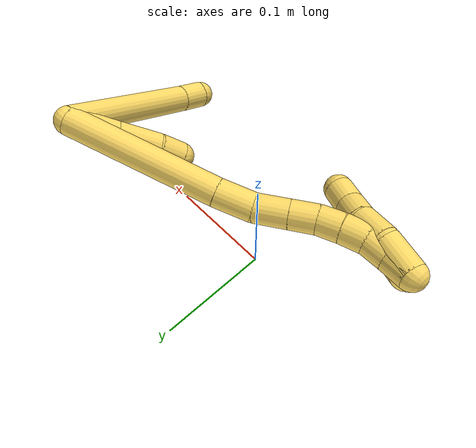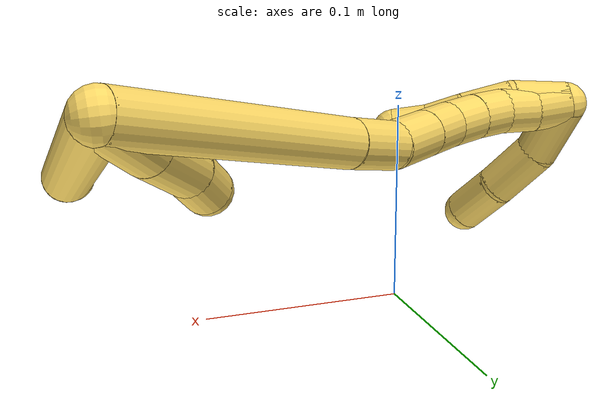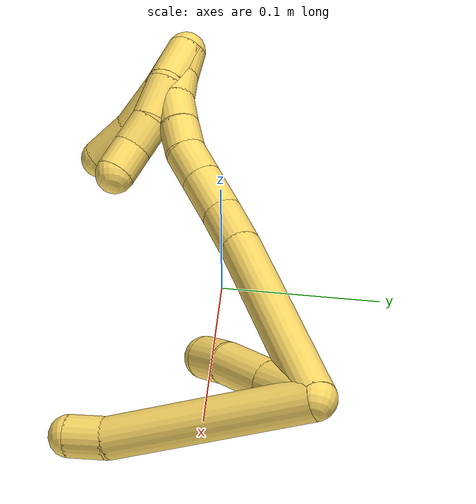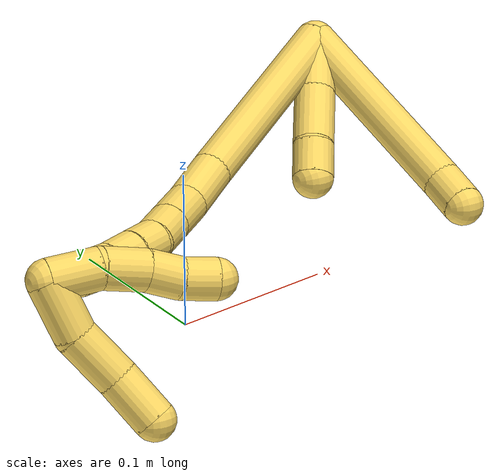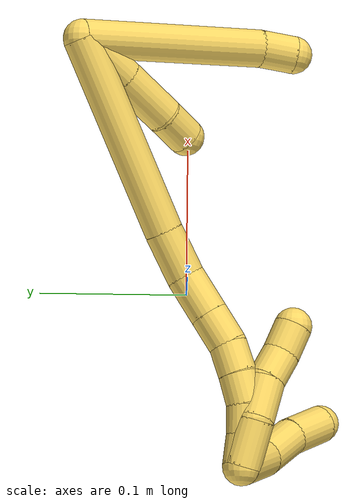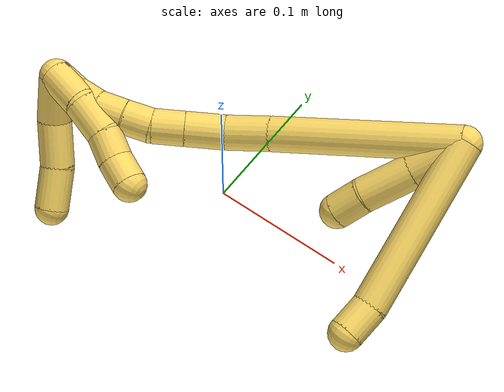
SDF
<sdf version="1.7">
 <world name="default">
  <model name="5">
   <static>0</static>
   <link name="5">
    <collision name="collision-cylinder-e_1_2_8">
     <pose>-0.061298 -0.014032 0.00694 1.11149 -1.32077 -0.898894</pose>
     <geometry><cylinder><radius>0.0125</radius><length>0.126531</length></cylinder></geometry>
     <surface>
      <friction><ode><mu>1.16</mu><mu2>1.16</mu2><slip1>0</slip1><slip2>0</slip2></ode></friction>
      <contact><ode><kp>1e+06</kp><kd>1</kd><max_vel>0</max_vel><min_depth>0.001</min_depth></ode></contact>
     </surface>
    </collision>
    <visual name="visual-cylinder-e_1_2_8">
     <pose>-0.061298 -0.014032 0.00694 1.11149 -1.32077 -0.898894</pose>
     <geometry><cylinder><radius>0.0125</radius><length>0.126531</length></cylinder></geometry>
     <material><ambient>1 0.858824 0.4 1</ambient></material>
    </visual>
    <collision name="collision-cylinder-e_2_8_6">
     <pose>-0.134273 -0.028955 0.013133 2.26804 -1.47153 -2.18941</pose>
     <geometry><cylinder><radius>0.0125</radius><length>0.023469</length></cylinder></geometry>
     <surface>
      <friction><ode><mu>1.16</mu><mu2>1.16</mu2><slip1>0</slip1><slip2>0</slip2></ode></friction>
      <contact><ode><kp>1e+06</kp><kd>1</kd><max_vel>0</max_vel><min_depth>0.001</min_depth></ode></contact>
     </surface>
    </collision>
    <visual name="visual-cylinder-e_2_8_6">
     <pose>-0.134273 -0.028955 0.013133 2.26804 -1.47153 -2.18941</pose>
     <geometry><cylinder><radius>0.0125</radius><length>0.023469</length></cylinder></geometry>
     <material><ambient>1 0.858824 0.4 1</ambient></material>
    </visual>
    <collision name="collision-cylinder-e_1_2_9">
     <pose>-0.015588 -0.007907 -0.009418 2.44317 -0.902886 -1.85325</pose>
     <geometry><cylinder><radius>0.0125</radius><length>0.03971</length></cylinder></geometry>
     <surface>
      <friction><ode><mu>1.16</mu><mu2>1.16</mu2><slip1>0</slip1><slip2>0</slip2></ode></friction>
      <contact><ode><kp>1e+06</kp><kd>1</kd><max_vel>0</max_vel><min_depth>0.001</min_depth></ode></contact>
     </surface>
    </collision>
    <visual name="visual-cylinder-e_1_2_9">
     <pose>-0.015588 -0.007907 -0.009418 2.44317 -0.902886 -1.85325</pose>
     <geometry><cylinder><radius>0.0125</radius><length>0.03971</length></cylinder></geometry>
     <material><ambient>1 0.858824 0.4 1</ambient></material>
    </visual>
    <collision name="collision-cylinder-e_2_9_10">
     <pose>-0.046125 -0.022603 -0.028462 2.52736 -0.903398 -1.98363</pose>
     <geometry><cylinder><radius>0.0125</radius><length>0.038065</length></cylinder></geometry>
     <surface>
      <friction><ode><mu>1.16</mu><mu2>1.16</mu2><slip1>0</slip1><slip2>0</slip2></ode></friction>
      <contact><ode><kp>1e+06</kp><kd>1</kd><max_vel>0</max_vel><min_depth>0.001</min_depth></ode></contact>
     </surface>
    </collision>
    <visual name="visual-cylinder-e_2_9_10">
     <pose>-0.046125 -0.022603 -0.028462 2.52736 -0.903398 -1.98363</pose>
     <geometry><cylinder><radius>0.0125</radius><length>0.038065</length></cylinder></geometry>
     <material><ambient>1 0.858824 0.4 1</ambient></material>
    </visual>
    <collision name="collision-cylinder-e_3_10_5">
     <pose>-0.06944 -0.034844 -0.042967 2.30066 -0.852284 -1.58595</pose>
     <geometry><cylinder><radius>0.0125</radius><length>0.022226</length></cylinder></geometry>
     <surface>
      <friction><ode><mu>1.16</mu><mu2>1.16</mu2><slip1>0</slip1><slip2>0</slip2></ode></friction>
      <contact><ode><kp>1e+06</kp><kd>1</kd><max_vel>0</max_vel><min_depth>0.001</min_depth></ode></contact>
     </surface>
    </collision>
    <visual name="visual-cylinder-e_3_10_5">
     <pose>-0.06944 -0.034844 -0.042967 2.30066 -0.852284 -1.58595</pose>
     <geometry><cylinder><radius>0.0125</radius><length>0.022226</length></cylinder></geometry>
     <material><ambient>1 0.858824 0.4 1</ambient></material>
    </visual>
    <collision name="collision-cylinder-e_1_2_11">
     <pose>-0.032085 -0.013493 -0.057794 2.91224 -0.49561 -2.28716</pose>
     <geometry><cylinder><radius>0.0125</radius><length>0.134932</length></cylinder></geometry>
     <surface>
      <friction><ode><mu>1.16</mu><mu2>1.16</mu2><slip1>0</slip1><slip2>0</slip2></ode></friction>
      <contact><ode><kp>1e+06</kp><kd>1</kd><max_vel>0</max_vel><min_depth>0.001</min_depth></ode></contact>
     </surface>
    </collision>
    <visual name="visual-cylinder-e_1_2_11">
     <pose>-0.032085 -0.013493 -0.057794 2.91224 -0.49561 -2.28716</pose>
     <geometry><cylinder><radius>0.0125</radius><length>0.134932</length></cylinder></geometry>
     <material><ambient>1 0.858824 0.4 1</ambient></material>
    </visual>
    <collision name="collision-cylinder-e_2_11_12">
     <pose>-0.072539 -0.029537 -0.129287 2.95742 -0.540915 -2.49855</pose>
     <geometry><cylinder><radius>0.0125</radius><length>0.032509</length></cylinder></geometry>
     <surface>
      <friction><ode><mu>1.16</mu><mu2>1.16</mu2><slip1>0</slip1><slip2>0</slip2></ode></friction>
      <contact><ode><kp>1e+06</kp><kd>1</kd><max_vel>0</max_vel><min_depth>0.001</min_depth></ode></contact>
     </surface>
    </collision>
    <visual name="visual-cylinder-e_2_11_12">
     <pose>-0.072539 -0.029537 -0.129287 2.95742 -0.540915 -2.49855</pose>
     <geometry><cylinder><radius>0.0125</radius><length>0.032509</length></cylinder></geometry>
     <material><ambient>1 0.858824 0.4 1</ambient></material>
    </visual>
    <collision name="collision-cylinder-e_3_12_13">
     <pose>-0.088982 -0.030748 -0.154967 -3.03013 -0.59005 2.77848</pose>
     <geometry><cylinder><radius>0.0125</radius><length>0.029018</length></cylinder></geometry>
     <surface>
      <friction><ode><mu>1.16</mu><mu2>1.16</mu2><slip1>0</slip1><slip2>0</slip2></ode></friction>
      <contact><ode><kp>1e+06</kp><kd>1</kd><max_vel>0</max_vel><min_depth>0.001</min_depth></ode></contact>
     </surface>
    </collision>
    <visual name="visual-cylinder-e_3_12_13">
     <pose>-0.088982 -0.030748 -0.154967 -3.03013 -0.59005 2.77848</pose>
     <geometry><cylinder><radius>0.0125</radius><length>0.029018</length></cylinder></geometry>
     <material><ambient>1 0.858824 0.4 1</ambient></material>
    </visual>
    <collision name="collision-cylinder-e_4_13_14">
     <pose>-0.103479 -0.028352 -0.176473 -3.03126 -0.590531 2.7824</pose>
     <geometry><cylinder><radius>0.0125</radius><length>0.023074</length></cylinder></geometry>
     <surface>
      <friction><ode><mu>1.16</mu><mu2>1.16</mu2><slip1>0</slip1><slip2>0</slip2></ode></friction>
      <contact><ode><kp>1e+06</kp><kd>1</kd><max_vel>0</max_vel><min_depth>0.001</min_depth></ode></contact>
     </surface>
    </collision>
    <visual name="visual-cylinder-e_4_13_14">
     <pose>-0.103479 -0.028352 -0.176473 -3.03126 -0.590531 2.7824</pose>
     <geometry><cylinder><radius>0.0125</radius><length>0.023074</length></cylinder></geometry>
     <material><ambient>1 0.858824 0.4 1</ambient></material>
    </visual>
    <collision name="collision-cylinder-e_5_14_15">
     <pose>-0.113316 -0.026305 -0.195424 -3.0367 -0.345674 2.55743</pose>
     <geometry><cylinder><radius>0.0125</radius><length>0.020149</length></cylinder></geometry>
     <surface>
      <friction><ode><mu>1.16</mu><mu2>1.16</mu2><slip1>0</slip1><slip2>0</slip2></ode></friction>
      <contact><ode><kp>1e+06</kp><kd>1</kd><max_vel>0</max_vel><min_depth>0.001</min_depth></ode></contact>
     </surface>
    </collision>
    <visual name="visual-cylinder-e_5_14_15">
     <pose>-0.113316 -0.026305 -0.195424 -3.0367 -0.345674 2.55743</pose>
     <geometry><cylinder><radius>0.0125</radius><length>0.020149</length></cylinder></geometry>
     <material><ambient>1 0.858824 0.4 1</ambient></material>
    </visual>
    <collision name="collision-cylinder-e_6_15_16">
     <pose>-0.119769 -0.02491 -0.214532 -3.10007 -0.303977 2.87209</pose>
     <geometry><cylinder><radius>0.0125</radius><length>0.020311</length></cylinder></geometry>
     <surface>
      <friction><ode><mu>1.16</mu><mu2>1.16</mu2><slip1>0</slip1><slip2>0</slip2></ode></friction>
      <contact><ode><kp>1e+06</kp><kd>1</kd><max_vel>0</max_vel><min_depth>0.001</min_depth></ode></contact>
     </surface>
    </collision>
    <visual name="visual-cylinder-e_6_15_16">
     <pose>-0.119769 -0.02491 -0.214532 -3.10007 -0.303977 2.87209</pose>
     <geometry><cylinder><radius>0.0125</radius><length>0.020311</length></cylinder></geometry>
     <material><ambient>1 0.858824 0.4 1</ambient></material>
    </visual>
    <collision name="collision-cylinder-e_7_16_17">
     <pose>-0.123267 -0.025186 -0.234181 3.07361 -0.045853 -1.18655</pose>
     <geometry><cylinder><radius>0.0125</radius><length>0.020004</length></cylinder></geometry>
     <surface>
      <friction><ode><mu>1.16</mu><mu2>1.16</mu2><slip1>0</slip1><slip2>0</slip2></ode></friction>
      <contact><ode><kp>1e+06</kp><kd>1</kd><max_vel>0</max_vel><min_depth>0.001</min_depth></ode></contact>
     </surface>
    </collision>
    <visual name="visual-cylinder-e_7_16_17">
     <pose>-0.123267 -0.025186 -0.234181 3.07361 -0.045853 -1.18655</pose>
     <geometry><cylinder><radius>0.0125</radius><length>0.020004</length></cylinder></geometry>
     <material><ambient>1 0.858824 0.4 1</ambient></material>
    </visual>
    <collision name="collision-cylinder-e_8_17_1">
     <pose>-0.122835 -0.025543 -0.254106 -3.10927 0.089225 -2.4468</pose>
     <geometry><cylinder><radius>0.0125</radius><length>0.020003</length></cylinder></geometry>
     <surface>
      <friction><ode><mu>1.16</mu><mu2>1.16</mu2><slip1>0</slip1><slip2>0</slip2></ode></friction>
      <contact><ode><kp>1e+06</kp><kd>1</kd><max_vel>0</max_vel><min_depth>0.001</min_depth></ode></contact>
     </surface>
    </collision>
    <visual name="visual-cylinder-e_8_17_1">
     <pose>-0.122835 -0.025543 -0.254106 -3.10927 0.089225 -2.4468</pose>
     <geometry><cylinder><radius>0.0125</radius><length>0.020003</length></cylinder></geometry>
     <material><ambient>1 0.858824 0.4 1</ambient></material>
    </visual>
    <collision name="collision-cylinder-e_1_1_18">
     <pose>-0.12514 -0.022919 -0.24919 -0.153553 -0.209282 0.016158</pose>
     <geometry><cylinder><radius>0.0125</radius><length>0.030771</length></cylinder></geometry>
     <surface>
      <friction><ode><mu>1.16</mu><mu2>1.16</mu2><slip1>0</slip1><slip2>0</slip2></ode></friction>
      <contact><ode><kp>1e+06</kp><kd>1</kd><max_vel>0</max_vel><min_depth>0.001</min_depth></ode></contact>
     </surface>
    </collision>
    <visual name="visual-cylinder-e_1_1_18">
     <pose>-0.12514 -0.022919 -0.24919 -0.153553 -0.209282 0.016158</pose>
     <geometry><cylinder><radius>0.0125</radius><length>0.030771</length></cylinder></geometry>
     <material><ambient>1 0.858824 0.4 1</ambient></material>
    </visual>
    <collision name="collision-cylinder-e_2_18_19">
     <pose>-0.131857 -0.022571 -0.221018 0.145847 -0.256127 -0.018813</pose>
     <geometry><cylinder><radius>0.0125</radius><length>0.027791</length></cylinder></geometry>
     <surface>
      <friction><ode><mu>1.16</mu><mu2>1.16</mu2><slip1>0</slip1><slip2>0</slip2></ode></friction>
      <contact><ode><kp>1e+06</kp><kd>1</kd><max_vel>0</max_vel><min_depth>0.001</min_depth></ode></contact>
     </surface>
    </collision>
    <visual name="visual-cylinder-e_2_18_19">
     <pose>-0.131857 -0.022571 -0.221018 0.145847 -0.256127 -0.018813</pose>
     <geometry><cylinder><radius>0.0125</radius><length>0.027791</length></cylinder></geometry>
     <material><ambient>1 0.858824 0.4 1</ambient></material>
    </visual>
    <collision name="collision-cylinder-e_3_19_20">
     <pose>-0.140315 -0.026568 -0.198625 0.220988 -0.487247 -0.05514</pose>
     <geometry><cylinder><radius>0.0125</radius><length>0.021095</length></cylinder></geometry>
     <surface>
      <friction><ode><mu>1.16</mu><mu2>1.16</mu2><slip1>0</slip1><slip2>0</slip2></ode></friction>
      <contact><ode><kp>1e+06</kp><kd>1</kd><max_vel>0</max_vel><min_depth>0.001</min_depth></ode></contact>
     </surface>
    </collision>
    <visual name="visual-cylinder-e_3_19_20">
     <pose>-0.140315 -0.026568 -0.198625 0.220988 -0.487247 -0.05514</pose>
     <geometry><cylinder><radius>0.0125</radius><length>0.021095</length></cylinder></geometry>
     <material><ambient>1 0.858824 0.4 1</ambient></material>
    </visual>
    <collision name="collision-cylinder-e_4_20_4">
     <pose>-0.149012 -0.028798 -0.180082 0.019855 -0.378506 -0.003803</pose>
     <geometry><cylinder><radius>0.0125</radius><length>0.020344</length></cylinder></geometry>
     <surface>
      <friction><ode><mu>1.16</mu><mu2>1.16</mu2><slip1>0</slip1><slip2>0</slip2></ode></friction>
      <contact><ode><kp>1e+06</kp><kd>1</kd><max_vel>0</max_vel><min_depth>0.001</min_depth></ode></contact>
     </surface>
    </collision>
    <visual name="visual-cylinder-e_4_20_4">
     <pose>-0.149012 -0.028798 -0.180082 0.019855 -0.378506 -0.003803</pose>
     <geometry><cylinder><radius>0.0125</radius><length>0.020344</length></cylinder></geometry>
     <material><ambient>1 0.858824 0.4 1</ambient></material>
    </visual>
    <collision name="collision-cylinder-e_1_1_21">
     <pose>-0.132077 -0.038459 -0.259247 1.22189 -0.623639 -0.444039</pose>
     <geometry><cylinder><radius>0.0125</radius><length>0.034705</length></cylinder></geometry>
     <surface>
      <friction><ode><mu>1.16</mu><mu2>1.16</mu2><slip1>0</slip1><slip2>0</slip2></ode></friction>
      <contact><ode><kp>1e+06</kp><kd>1</kd><max_vel>0</max_vel><min_depth>0.001</min_depth></ode></contact>
     </surface>
    </collision>
    <visual name="visual-cylinder-e_1_1_21">
     <pose>-0.132077 -0.038459 -0.259247 1.22189 -0.623639 -0.444039</pose>
     <geometry><cylinder><radius>0.0125</radius><length>0.034705</length></cylinder></geometry>
     <material><ambient>1 0.858824 0.4 1</ambient></material>
    </visual>
    <collision name="collision-cylinder-e_2_21_22">
     <pose>-0.152993 -0.061503 -0.245726 0.844862 -0.688159 -0.319393</pose>
     <geometry><cylinder><radius>0.0125</radius><length>0.033954</length></cylinder></geometry>
     <surface>
      <friction><ode><mu>1.16</mu><mu2>1.16</mu2><slip1>0</slip1><slip2>0</slip2></ode></friction>
      <contact><ode><kp>1e+06</kp><kd>1</kd><max_vel>0</max_vel><min_depth>0.001</min_depth></ode></contact>
     </surface>
    </collision>
    <visual name="visual-cylinder-e_2_21_22">
     <pose>-0.152993 -0.061503 -0.245726 0.844862 -0.688159 -0.319393</pose>
     <geometry><cylinder><radius>0.0125</radius><length>0.033954</length></cylinder></geometry>
     <material><ambient>1 0.858824 0.4 1</ambient></material>
    </visual>
    <collision name="collision-cylinder-e_3_22_3">
     <pose>-0.175881 -0.079216 -0.230978 0.918153 -0.882761 -0.458857</pose>
     <geometry><cylinder><radius>0.0125</radius><length>0.031341</length></cylinder></geometry>
     <surface>
      <friction><ode><mu>1.16</mu><mu2>1.16</mu2><slip1>0</slip1><slip2>0</slip2></ode></friction>
      <contact><ode><kp>1e+06</kp><kd>1</kd><max_vel>0</max_vel><min_depth>0.001</min_depth></ode></contact>
     </surface>
    </collision>
    <visual name="visual-cylinder-e_3_22_3">
     <pose>-0.175881 -0.079216 -0.230978 0.918153 -0.882761 -0.458857</pose>
     <geometry><cylinder><radius>0.0125</radius><length>0.031341</length></cylinder></geometry>
     <material><ambient>1 0.858824 0.4 1</ambient></material>
    </visual>
    <collision name="collision-sphere-3">
     <pose>-0.187987 -0.087122 -0.224935 0 -0 0</pose>
     <geometry><sphere><radius>0.0125</radius></sphere></geometry>
     <surface>
      <friction><ode><mu>1.16</mu><mu2>1.16</mu2><slip1>0</slip1><slip2>0</slip2></ode></friction>
      <contact><ode><kp>1e+06</kp><kd>1</kd><max_vel>0</max_vel><min_depth>0.001</min_depth></ode></contact>
     </surface>
    </collision>
    <visual name="visual-sphere-3">
     <pose>-0.187987 -0.087122 -0.224935 0 -0 0</pose>
     <geometry><sphere><radius>0.0125</radius></sphere></geometry>
     <material><ambient>1 0.858824 0.4 1</ambient></material>
    </visual>
    <collision name="collision-sphere-22">
     <pose>-0.163776 -0.07131 -0.237021 0 -0 0</pose>
     <geometry><sphere><radius>0.0125</radius></sphere></geometry>
     <surface>
      <friction><ode><mu>1.16</mu><mu2>1.16</mu2><slip1>0</slip1><slip2>0</slip2></ode></friction>
      <contact><ode><kp>1e+06</kp><kd>1</kd><max_vel>0</max_vel><min_depth>0.001</min_depth></ode></contact>
     </surface>
    </collision>
    <visual name="visual-sphere-22">
     <pose>-0.163776 -0.07131 -0.237021 0 -0 0</pose>
     <geometry><sphere><radius>0.0125</radius></sphere></geometry>
     <material><ambient>1 0.858824 0.4 1</ambient></material>
    </visual>
    <collision name="collision-sphere-21">
     <pose>-0.142211 -0.051696 -0.254431 0 -0 0</pose>
     <geometry><sphere><radius>0.0125</radius></sphere></geometry>
     <surface>
      <friction><ode><mu>1.16</mu><mu2>1.16</mu2><slip1>0</slip1><slip2>0</slip2></ode></friction>
      <contact><ode><kp>1e+06</kp><kd>1</kd><max_vel>0</max_vel><min_depth>0.001</min_depth></ode></contact>
     </surface>
    </collision>
    <visual name="visual-sphere-21">
     <pose>-0.142211 -0.051696 -0.254431 0 -0 0</pose>
     <geometry><sphere><radius>0.0125</radius></sphere></geometry>
     <material><ambient>1 0.858824 0.4 1</ambient></material>
    </visual>
    <collision name="collision-sphere-4">
     <pose>-0.152771 -0.028986 -0.170632 0 -0 0</pose>
     <geometry><sphere><radius>0.0125</radius></sphere></geometry>
     <surface>
      <friction><ode><mu>1.16</mu><mu2>1.16</mu2><slip1>0</slip1><slip2>0</slip2></ode></friction>
      <contact><ode><kp>1e+06</kp><kd>1</kd><max_vel>0</max_vel><min_depth>0.001</min_depth></ode></contact>
     </surface>
    </collision>
    <visual name="visual-sphere-4">
     <pose>-0.152771 -0.028986 -0.170632 0 -0 0</pose>
     <geometry><sphere><radius>0.0125</radius></sphere></geometry>
     <material><ambient>1 0.858824 0.4 1</ambient></material>
    </visual>
    <collision name="collision-sphere-20">
     <pose>-0.145253 -0.02861 -0.189532 0 -0 0</pose>
     <geometry><sphere><radius>0.0125</radius></sphere></geometry>
     <surface>
      <friction><ode><mu>1.16</mu><mu2>1.16</mu2><slip1>0</slip1><slip2>0</slip2></ode></friction>
      <contact><ode><kp>1e+06</kp><kd>1</kd><max_vel>0</max_vel><min_depth>0.001</min_depth></ode></contact>
     </surface>
    </collision>
    <visual name="visual-sphere-20">
     <pose>-0.145253 -0.02861 -0.189532 0 -0 0</pose>
     <geometry><sphere><radius>0.0125</radius></sphere></geometry>
     <material><ambient>1 0.858824 0.4 1</ambient></material>
    </visual>
    <collision name="collision-sphere-5">
     <pose>-0.077805 -0.040296 -0.047844 0 -0 0</pose>
     <geometry><sphere><radius>0.0125</radius></sphere></geometry>
     <surface>
      <friction><ode><mu>1.16</mu><mu2>1.16</mu2><slip1>0</slip1><slip2>0</slip2></ode></friction>
      <contact><ode><kp>1e+06</kp><kd>1</kd><max_vel>0</max_vel><min_depth>0.001</min_depth></ode></contact>
     </surface>
    </collision>
    <visual name="visual-sphere-5">
     <pose>-0.077805 -0.040296 -0.047844 0 -0 0</pose>
     <geometry><sphere><radius>0.0125</radius></sphere></geometry>
     <material><ambient>1 0.858824 0.4 1</ambient></material>
    </visual>
    <collision name="collision-sphere-10">
     <pose>-0.061074 -0.029393 -0.038089 0 -0 0</pose>
     <geometry><sphere><radius>0.0125</radius></sphere></geometry>
     <surface>
      <friction><ode><mu>1.16</mu><mu2>1.16</mu2><slip1>0</slip1><slip2>0</slip2></ode></friction>
      <contact><ode><kp>1e+06</kp><kd>1</kd><max_vel>0</max_vel><min_depth>0.001</min_depth></ode></contact>
     </surface>
    </collision>
    <visual name="visual-sphere-10">
     <pose>-0.061074 -0.029393 -0.038089 0 -0 0</pose>
     <geometry><sphere><radius>0.0125</radius></sphere></geometry>
     <material><ambient>1 0.858824 0.4 1</ambient></material>
    </visual>
    <collision name="collision-sphere-6">
     <pose>-0.14595 -0.029846 0.012386 0 -0 0</pose>
     <geometry><sphere><radius>0.0125</radius></sphere></geometry>
     <surface>
      <friction><ode><mu>1.16</mu><mu2>1.16</mu2><slip1>0</slip1><slip2>0</slip2></ode></friction>
      <contact><ode><kp>1e+06</kp><kd>1</kd><max_vel>0</max_vel><min_depth>0.001</min_depth></ode></contact>
     </surface>
    </collision>
    <visual name="visual-sphere-6">
     <pose>-0.14595 -0.029846 0.012386 0 -0 0</pose>
     <geometry><sphere><radius>0.0125</radius></sphere></geometry>
     <material><ambient>1 0.858824 0.4 1</ambient></material>
    </visual>
    <collision name="collision-sphere-9">
     <pose>-0.031177 -0.015814 -0.018835 0 -0 0</pose>
     <geometry><sphere><radius>0.0125</radius></sphere></geometry>
     <surface>
      <friction><ode><mu>1.16</mu><mu2>1.16</mu2><slip1>0</slip1><slip2>0</slip2></ode></friction>
      <contact><ode><kp>1e+06</kp><kd>1</kd><max_vel>0</max_vel><min_depth>0.001</min_depth></ode></contact>
     </surface>
    </collision>
    <visual name="visual-sphere-9">
     <pose>-0.031177 -0.015814 -0.018835 0 -0 0</pose>
     <geometry><sphere><radius>0.0125</radius></sphere></geometry>
     <material><ambient>1 0.858824 0.4 1</ambient></material>
    </visual>
    <collision name="collision-sphere-2">
     <geometry><sphere><radius>0.0125</radius></sphere></geometry>
     <surface>
      <friction><ode><mu>1.16</mu><mu2>1.16</mu2><slip1>0</slip1><slip2>0</slip2></ode></friction>
      <contact><ode><kp>1e+06</kp><kd>1</kd><max_vel>0</max_vel><min_depth>0.001</min_depth></ode></contact>
     </surface>
    </collision>
    <visual name="visual-sphere-2">
     <geometry><sphere><radius>0.0125</radius></sphere></geometry>
     <material><ambient>1 0.858824 0.4 1</ambient></material>
    </visual>
    <collision name="collision-sphere-19">
     <pose>-0.135377 -0.024525 -0.207718 0 -0 0</pose>
     <geometry><sphere><radius>0.0125</radius></sphere></geometry>
     <surface>
      <friction><ode><mu>1.16</mu><mu2>1.16</mu2><slip1>0</slip1><slip2>0</slip2></ode></friction>
      <contact><ode><kp>1e+06</kp><kd>1</kd><max_vel>0</max_vel><min_depth>0.001</min_depth></ode></contact>
     </surface>
    </collision>
    <visual name="visual-sphere-19">
     <pose>-0.135377 -0.024525 -0.207718 0 -0 0</pose>
     <geometry><sphere><radius>0.0125</radius></sphere></geometry>
     <material><ambient>1 0.858824 0.4 1</ambient></material>
    </visual>
    <collision name="collision-sphere-8">
     <pose>-0.122596 -0.028063 0.01388 0 -0 0</pose>
     <geometry><sphere><radius>0.0125</radius></sphere></geometry>
     <surface>
      <friction><ode><mu>1.16</mu><mu2>1.16</mu2><slip1>0</slip1><slip2>0</slip2></ode></friction>
      <contact><ode><kp>1e+06</kp><kd>1</kd><max_vel>0</max_vel><min_depth>0.001</min_depth></ode></contact>
     </surface>
    </collision>
    <visual name="visual-sphere-8">
     <pose>-0.122596 -0.028063 0.01388 0 -0 0</pose>
     <geometry><sphere><radius>0.0125</radius></sphere></geometry>
     <material><ambient>1 0.858824 0.4 1</ambient></material>
    </visual>
    <collision name="collision-sphere-11">
     <pose>-0.064169 -0.026986 -0.115589 0 -0 0</pose>
     <geometry><sphere><radius>0.0125</radius></sphere></geometry>
     <surface>
      <friction><ode><mu>1.16</mu><mu2>1.16</mu2><slip1>0</slip1><slip2>0</slip2></ode></friction>
      <contact><ode><kp>1e+06</kp><kd>1</kd><max_vel>0</max_vel><min_depth>0.001</min_depth></ode></contact>
     </surface>
    </collision>
    <visual name="visual-sphere-11">
     <pose>-0.064169 -0.026986 -0.115589 0 -0 0</pose>
     <geometry><sphere><radius>0.0125</radius></sphere></geometry>
     <material><ambient>1 0.858824 0.4 1</ambient></material>
    </visual>
    <collision name="collision-sphere-12">
     <pose>-0.080909 -0.032089 -0.142986 0 -0 0</pose>
     <geometry><sphere><radius>0.0125</radius></sphere></geometry>
     <surface>
      <friction><ode><mu>1.16</mu><mu2>1.16</mu2><slip1>0</slip1><slip2>0</slip2></ode></friction>
      <contact><ode><kp>1e+06</kp><kd>1</kd><max_vel>0</max_vel><min_depth>0.001</min_depth></ode></contact>
     </surface>
    </collision>
    <visual name="visual-sphere-12">
     <pose>-0.080909 -0.032089 -0.142986 0 -0 0</pose>
     <geometry><sphere><radius>0.0125</radius></sphere></geometry>
     <material><ambient>1 0.858824 0.4 1</ambient></material>
    </visual>
    <collision name="collision-sphere-13">
     <pose>-0.097055 -0.029407 -0.166948 0 -0 0</pose>
     <geometry><sphere><radius>0.0125</radius></sphere></geometry>
     <surface>
      <friction><ode><mu>1.16</mu><mu2>1.16</mu2><slip1>0</slip1><slip2>0</slip2></ode></friction>
      <contact><ode><kp>1e+06</kp><kd>1</kd><max_vel>0</max_vel><min_depth>0.001</min_depth></ode></contact>
     </surface>
    </collision>
    <visual name="visual-sphere-13">
     <pose>-0.097055 -0.029407 -0.166948 0 -0 0</pose>
     <geometry><sphere><radius>0.0125</radius></sphere></geometry>
     <material><ambient>1 0.858824 0.4 1</ambient></material>
    </visual>
    <collision name="collision-sphere-14">
     <pose>-0.109903 -0.027297 -0.185998 0 -0 0</pose>
     <geometry><sphere><radius>0.0125</radius></sphere></geometry>
     <surface>
      <friction><ode><mu>1.16</mu><mu2>1.16</mu2><slip1>0</slip1><slip2>0</slip2></ode></friction>
      <contact><ode><kp>1e+06</kp><kd>1</kd><max_vel>0</max_vel><min_depth>0.001</min_depth></ode></contact>
     </surface>
    </collision>
    <visual name="visual-sphere-14">
     <pose>-0.109903 -0.027297 -0.185998 0 -0 0</pose>
     <geometry><sphere><radius>0.0125</radius></sphere></geometry>
     <material><ambient>1 0.858824 0.4 1</ambient></material>
    </visual>
    <collision name="collision-sphere-15">
     <pose>-0.11673 -0.025312 -0.20485 0 -0 0</pose>
     <geometry><sphere><radius>0.0125</radius></sphere></geometry>
     <surface>
      <friction><ode><mu>1.16</mu><mu2>1.16</mu2><slip1>0</slip1><slip2>0</slip2></ode></friction>
      <contact><ode><kp>1e+06</kp><kd>1</kd><max_vel>0</max_vel><min_depth>0.001</min_depth></ode></contact>
     </surface>
    </collision>
    <visual name="visual-sphere-15">
     <pose>-0.11673 -0.025312 -0.20485 0 -0 0</pose>
     <geometry><sphere><radius>0.0125</radius></sphere></geometry>
     <material><ambient>1 0.858824 0.4 1</ambient></material>
    </visual>
    <collision name="collision-sphere-16">
     <pose>-0.122809 -0.024508 -0.224213 0 -0 0</pose>
     <geometry><sphere><radius>0.0125</radius></sphere></geometry>
     <surface>
      <friction><ode><mu>1.16</mu><mu2>1.16</mu2><slip1>0</slip1><slip2>0</slip2></ode></friction>
      <contact><ode><kp>1e+06</kp><kd>1</kd><max_vel>0</max_vel><min_depth>0.001</min_depth></ode></contact>
     </surface>
    </collision>
    <visual name="visual-sphere-16">
     <pose>-0.122809 -0.024508 -0.224213 0 -0 0</pose>
     <geometry><sphere><radius>0.0125</radius></sphere></geometry>
     <material><ambient>1 0.858824 0.4 1</ambient></material>
    </visual>
    <collision name="collision-sphere-17">
     <pose>-0.123726 -0.025865 -0.244149 0 -0 0</pose>
     <geometry><sphere><radius>0.0125</radius></sphere></geometry>
     <surface>
      <friction><ode><mu>1.16</mu><mu2>1.16</mu2><slip1>0</slip1><slip2>0</slip2></ode></friction>
      <contact><ode><kp>1e+06</kp><kd>1</kd><max_vel>0</max_vel><min_depth>0.001</min_depth></ode></contact>
     </surface>
    </collision>
    <visual name="visual-sphere-17">
     <pose>-0.123726 -0.025865 -0.244149 0 -0 0</pose>
     <geometry><sphere><radius>0.0125</radius></sphere></geometry>
     <material><ambient>1 0.858824 0.4 1</ambient></material>
    </visual>
    <collision name="collision-sphere-1">
     <pose>-0.121944 -0.025221 -0.264063 0 -0 0</pose>
     <geometry><sphere><radius>0.0125</radius></sphere></geometry>
     <surface>
      <friction><ode><mu>1.16</mu><mu2>1.16</mu2><slip1>0</slip1><slip2>0</slip2></ode></friction>
      <contact><ode><kp>1e+06</kp><kd>1</kd><max_vel>0</max_vel><min_depth>0.001</min_depth></ode></contact>
     </surface>
    </collision>
    <visual name="visual-sphere-1">
     <pose>-0.121944 -0.025221 -0.264063 0 -0 0</pose>
     <geometry><sphere><radius>0.0125</radius></sphere></geometry>
     <material><ambient>1 0.858824 0.4 1</ambient></material>
    </visual>
    <collision name="collision-sphere-18">
     <pose>-0.128336 -0.020618 -0.234318 0 -0 0</pose>
     <geometry><sphere><radius>0.0125</radius></sphere></geometry>
     <surface>
      <friction><ode><mu>1.16</mu><mu2>1.16</mu2><slip1>0</slip1><slip2>0</slip2></ode></friction>
      <contact><ode><kp>1e+06</kp><kd>1</kd><max_vel>0</max_vel><min_depth>0.001</min_depth></ode></contact>
     </surface>
    </collision>
    <visual name="visual-sphere-18">
     <pose>-0.128336 -0.020618 -0.234318 0 -0 0</pose>
     <geometry><sphere><radius>0.0125</radius></sphere></geometry>
     <material><ambient>1 0.858824 0.4 1</ambient></material>
    </visual>
    <inertial>
     <pose>-0.086558 -0.025555 -0.114802 0 -0 0</pose>
     <mass>0.75</mass>
     <inertia>
      <ixx>-0.000311</ixx>
      <ixy>0</ixy>
      <ixz>0</ixz>
      <iyy>0.00016</iyy>
      <iyz>0</iyz>
      <izz>0.000381</izz>
     </inertia>
    </inertial>
   </link>
   <pose>0.151553 0.069058 0.116744 1.64111 -0.18671 1.51982</pose>
  </model>
 </world>
</sdf>
